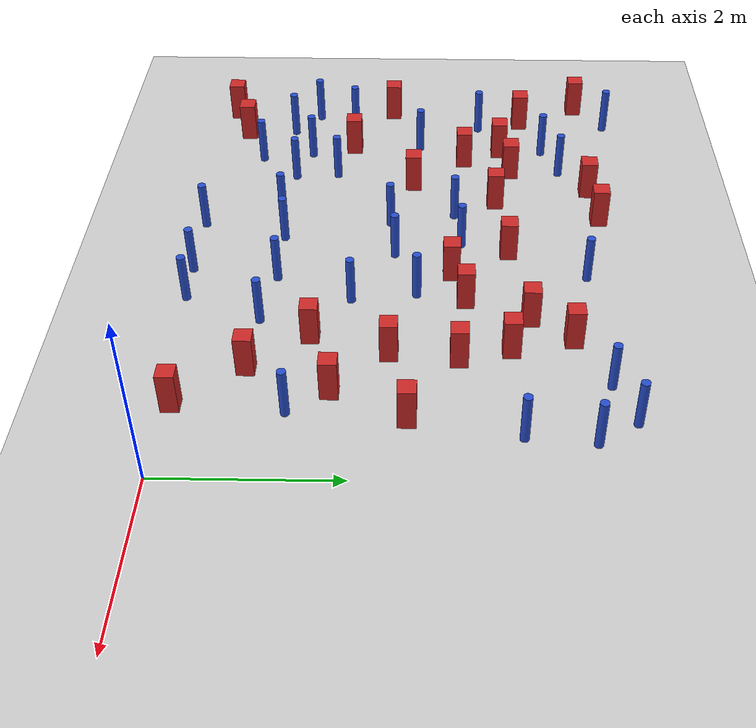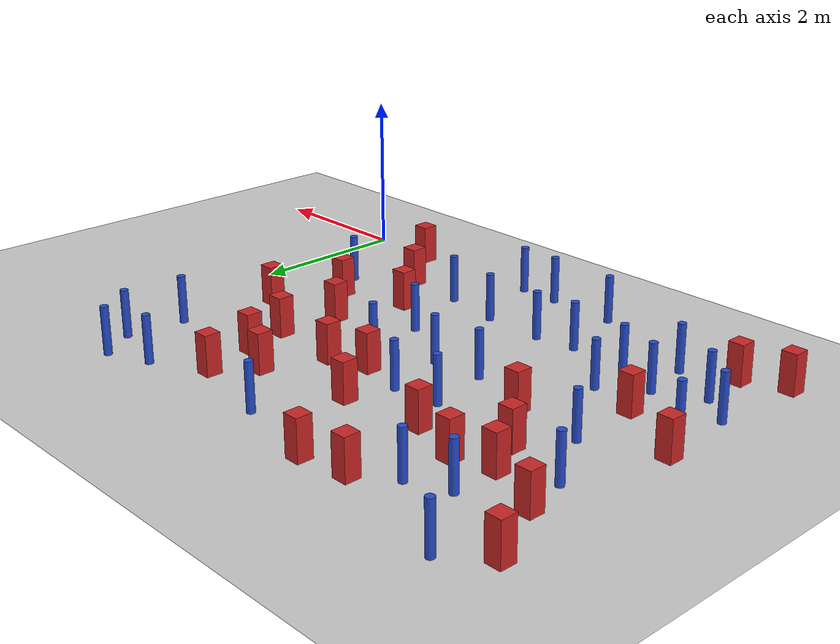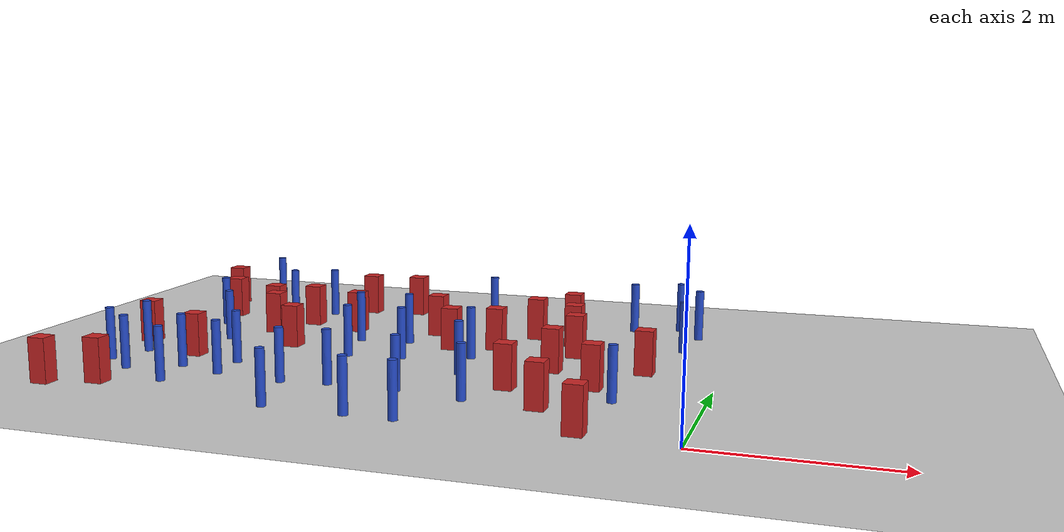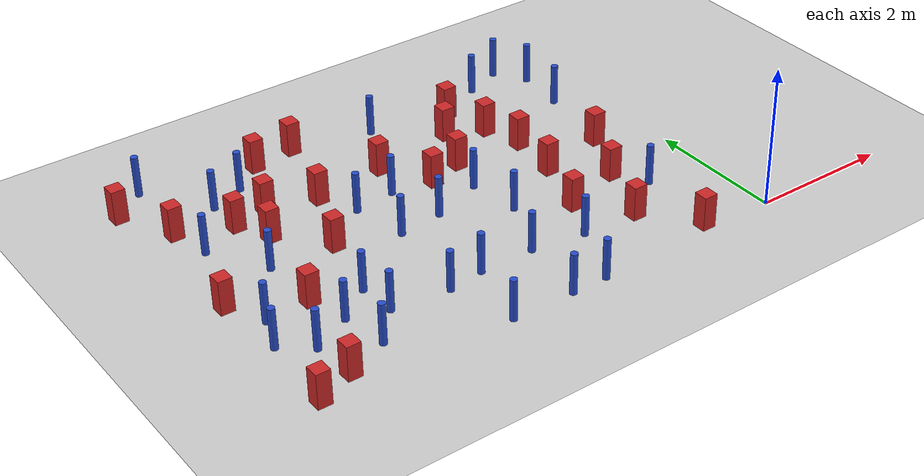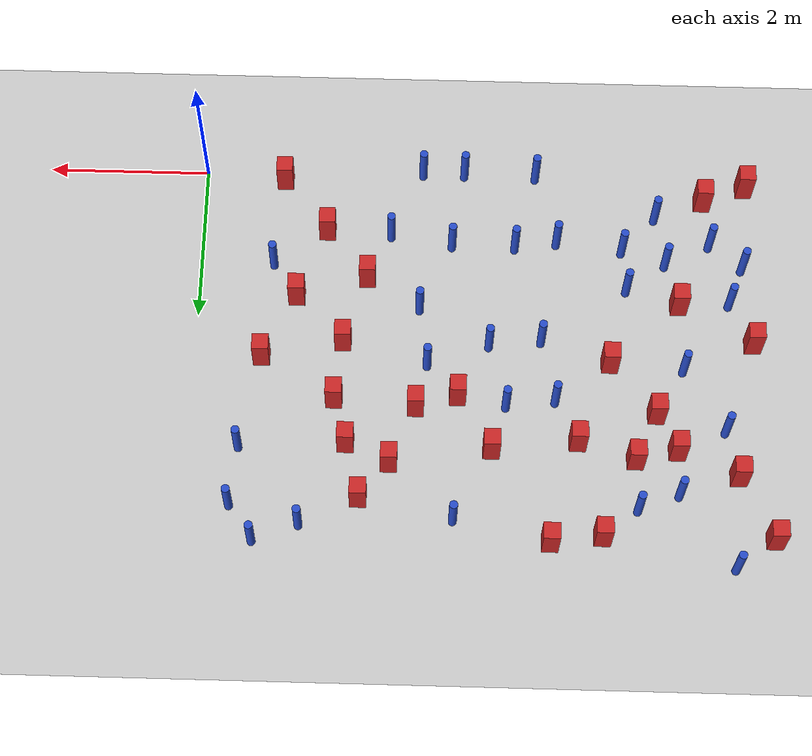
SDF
<sdf version="1.6">
 <world name="default">
  <model name="ground_plane">
   <static>1</static>
   <link name="link">
    <collision name="collision">
     <geometry><plane><normal>0 0 1</normal><size>100 100</size></plane></geometry>
     <surface><friction><ode><mu>100</mu><mu2>50</mu2></ode></friction></surface>
    </collision>
    <visual name="visual">
     <cast_shadows>0</cast_shadows>
     <geometry><plane><normal>0 0 1</normal><size>100 100</size></plane></geometry>
     <material>
      <ambient>1.0 1.0 1.0 1.0</ambient>
      <diffuse>0.8 0.8 0.8 1.0</diffuse>
      <specular>0.01 0.01 0.01 1.000000</specular>
     </material>
    </visual>
   </link>
  </model>
  <model name="pole_obstacle1">
   <static>true</static>
   <pose>-3.26398219934 -0.0242368059715 2.88873142074e-08 -9.90536689502e-09 4.60219948997e-07 -1.20965994956e-07</pose>
   <link name="link">
    <pose>0 0 0.3 0 -0 0</pose>
    <inertial>
     <mass>1</mass>
     <inertia><ixx>0.145833</ixx><ixy>0</ixy><ixz>0</ixz><iyy>0.145833</iyy><iyz>0</iyz><izz>0.125</izz></inertia>
    </inertial>
    <collision name="collision">
     <geometry><cylinder><radius>0.05</radius><length>.6</length></cylinder></geometry>
    </collision>
    <visual name="visual">
     <geometry><cylinder><radius>0.05</radius><length>.6</length></cylinder></geometry>
     <material>
      <script><name>Gazebo/Blue</name><uri>file://media/materials/scripts/gazebo.material</uri></script>
     </material>
    </visual>
   </link>
  </model>
  <model name="pole_obstacle4">
   <static>true</static>
   <pose>-4.161526478 -0.00585685088212 2.88873142074e-08 -9.90536689125e-09 4.60219949006e-07 -1.20965994951e-07</pose>
   <link name="link">
    <pose>0 0 0.3 0 -0 0</pose>
    <inertial>
     <mass>1</mass>
     <inertia><ixx>0.145833</ixx><ixy>0</ixy><ixz>0</ixz><iyy>0.145833</iyy><iyz>0</iyz><izz>0.125</izz></inertia>
    </inertial>
    <collision name="collision">
     <geometry><cylinder><radius>0.05</radius><length>.6</length></cylinder></geometry>
    </collision>
    <visual name="visual">
     <geometry><cylinder><radius>0.05</radius><length>.6</length></cylinder></geometry>
     <material>
      <script><name>Gazebo/Blue</name><uri>file://media/materials/scripts/gazebo.material</uri></script>
     </material>
    </visual>
   </link>
  </model>
  <model name="pole_obstacle8">
   <static>true</static>
   <pose>-4.42272245899 0.923110105509 2.88873142074e-08 -9.90536689837e-09 4.60219948989e-07 -1.2096599496e-07</pose>
   <link name="link">
    <pose>0 0 0.3 0 -0 0</pose>
    <inertial>
     <mass>1</mass>
     <inertia><ixx>0.145833</ixx><ixy>0</ixy><ixz>0</ixz><iyy>0.145833</iyy><iyz>0</iyz><izz>0.125</izz></inertia>
    </inertial>
    <collision name="collision">
     <geometry><cylinder><radius>0.05</radius><length>.6</length></cylinder></geometry>
    </collision>
    <visual name="visual">
     <geometry><cylinder><radius>0.05</radius><length>.6</length></cylinder></geometry>
     <material>
      <script><name>Gazebo/Blue</name><uri>file://media/materials/scripts/gazebo.material</uri></script>
     </material>
    </visual>
   </link>
  </model>
  <model name="pole_obstacle22">
   <static>true</static>
   <pose>-5.3675292602 4.44108544787 2.88873142074e-08 -9.90536690842e-09 4.60219948965e-07 -1.20965994976e-07</pose>
   <link name="link">
    <pose>0 0 0.3 0 -0 0</pose>
    <inertial>
     <mass>1</mass>
     <inertia><ixx>0.145833</ixx><ixy>0</ixy><ixz>0</ixz><iyy>0.145833</iyy><iyz>0</iyz><izz>0.125</izz></inertia>
    </inertial>
    <collision name="collision">
     <geometry><cylinder><radius>0.05</radius><length>.6</length></cylinder></geometry>
    </collision>
    <visual name="visual">
     <geometry><cylinder><radius>0.05</radius><length>.6</length></cylinder></geometry>
     <material>
      <script><name>Gazebo/Blue</name><uri>file://media/materials/scripts/gazebo.material</uri></script>
     </material>
    </visual>
   </link>
  </model>
  <model name="pole_obstacle32">
   <static>true</static>
   <pose>-6.72400458149 1.230508557 2.88873142074e-08 -9.90536689445e-09 4.60219948999e-07 -1.20965994956e-07</pose>
   <link name="link">
    <pose>0 0 0.3 0 -0 0</pose>
    <inertial>
     <mass>1</mass>
     <inertia><ixx>0.145833</ixx><ixy>0</ixy><ixz>0</ixz><iyy>0.145833</iyy><iyz>0</iyz><izz>0.125</izz></inertia>
    </inertial>
    <collision name="collision">
     <geometry><cylinder><radius>0.05</radius><length>.6</length></cylinder></geometry>
    </collision>
    <visual name="visual">
     <geometry><cylinder><radius>0.05</radius><length>.6</length></cylinder></geometry>
     <material>
      <script><name>Gazebo/Blue</name><uri>file://media/materials/scripts/gazebo.material</uri></script>
     </material>
    </visual>
   </link>
  </model>
  <model name="square_post_obstacle31">
   <static>true</static>
   <pose>-5.34990355791 3.80533150657 8.22691968438e-08 7.2212513382e-06 -7.54495500217e-07 2.29674213826e-05</pose>
   <link name="link">
    <pose>0 0 0.25 0 -0 0</pose>
    <inertial>
     <mass>100</mass>
     <inertia>
      <ixx>0.166667</ixx>
      <ixy>0</ixy>
      <ixz>0</ixz>
      <iyy>0.166667</iyy>
      <iyz>0</iyz>
      <izz>0.166667</izz>
     </inertia>
    </inertial>
    <collision name="collision"><geometry><box><size>.2 .2 .5</size></box></geometry></collision>
    <visual name="visual">
     <geometry><box><size>.2 .2 .5</size></box></geometry>
     <material>
      <script><name>Gazebo/Red</name><uri>file://media/materials/scripts/gazebo.material</uri></script>
     </material>
    </visual>
   </link>
  </model>
  <model name="pole_obstacle44">
   <static>true</static>
   <pose>-0.524122467253 4.49635875768 2.88873142074e-08 -9.90536689526e-09 4.60219948997e-07 -1.20965994955e-07</pose>
   <link name="link">
    <pose>0 0 0.3 0 -0 0</pose>
    <inertial>
     <mass>1</mass>
     <inertia><ixx>0.145833</ixx><ixy>0</ixy><ixz>0</ixz><iyy>0.145833</iyy><iyz>0</iyz><izz>0.125</izz></inertia>
    </inertial>
    <collision name="collision">
     <geometry><cylinder><radius>0.05</radius><length>.6</length></cylinder></geometry>
    </collision>
    <visual name="visual">
     <geometry><cylinder><radius>0.05</radius><length>.6</length></cylinder></geometry>
     <material>
      <script><name>Gazebo/Blue</name><uri>file://media/materials/scripts/gazebo.material</uri></script>
     </material>
    </visual>
   </link>
  </model>
  <model name="pole_obstacle56">
   <static>true</static>
   <pose>-3.17685898146 4.62035457238 2.88873142074e-08 -9.90536692062e-09 4.60219948937e-07 -1.20965994985e-07</pose>
   <link name="link">
    <pose>0 0 0.3 0 -0 0</pose>
    <inertial>
     <mass>1</mass>
     <inertia><ixx>0.145833</ixx><ixy>0</ixy><ixz>0</ixz><iyy>0.145833</iyy><iyz>0</iyz><izz>0.125</izz></inertia>
    </inertial>
    <collision name="collision">
     <geometry><cylinder><radius>0.05</radius><length>.6</length></cylinder></geometry>
    </collision>
    <visual name="visual">
     <geometry><cylinder><radius>0.05</radius><length>.6</length></cylinder></geometry>
     <material>
      <script><name>Gazebo/Blue</name><uri>file://media/materials/scripts/gazebo.material</uri></script>
     </material>
    </visual>
   </link>
  </model>
  <model name="pole_obstacle62">
   <static>true</static>
   <pose>-3.90356683705 1.0001730065 2.88873142074e-08 -9.90536691025e-09 4.60219948961e-07 -1.2096599498e-07</pose>
   <link name="link">
    <pose>0 0 0.3 0 -0 0</pose>
    <inertial>
     <mass>1</mass>
     <inertia><ixx>0.145833</ixx><ixy>0</ixy><ixz>0</ixz><iyy>0.145833</iyy><iyz>0</iyz><izz>0.125</izz></inertia>
    </inertial>
    <collision name="collision">
     <geometry><cylinder><radius>0.05</radius><length>.6</length></cylinder></geometry>
    </collision>
    <visual name="visual">
     <geometry><cylinder><radius>0.05</radius><length>.6</length></cylinder></geometry>
     <material>
      <script><name>Gazebo/Blue</name><uri>file://media/materials/scripts/gazebo.material</uri></script>
     </material>
    </visual>
   </link>
  </model>
  <model name="square_post_obstacle48">
   <static>true</static>
   <pose>-0.99838406911 0.103101860127 8.22691968438e-08 7.2212513382e-06 -7.54495500217e-07 2.29674213826e-05</pose>
   <link name="link">
    <pose>0 0 0.25 0 -0 0</pose>
    <inertial>
     <mass>100</mass>
     <inertia>
      <ixx>0.166667</ixx>
      <ixy>0</ixy>
      <ixz>0</ixz>
      <iyy>0.166667</iyy>
      <iyz>0</iyz>
      <izz>0.166667</izz>
     </inertia>
    </inertial>
    <collision name="collision"><geometry><box><size>.2 .2 .5</size></box></geometry></collision>
    <visual name="visual">
     <geometry><box><size>.2 .2 .5</size></box></geometry>
     <material>
      <script><name>Gazebo/Red</name><uri>file://media/materials/scripts/gazebo.material</uri></script>
     </material>
    </visual>
   </link>
  </model>
  <model name="pole_obstacle63">
   <static>true</static>
   <pose>-5.86101761593 4.24448428332 2.88873142074e-08 -9.90536690842e-09 4.60219948965e-07 -1.20965994976e-07</pose>
   <link name="link">
    <pose>0 0 0.3 0 -0 0</pose>
    <inertial>
     <mass>1</mass>
     <inertia><ixx>0.145833</ixx><ixy>0</ixy><ixz>0</ixz><iyy>0.145833</iyy><iyz>0</iyz><izz>0.125</izz></inertia>
    </inertial>
    <collision name="collision">
     <geometry><cylinder><radius>0.05</radius><length>.6</length></cylinder></geometry>
    </collision>
    <visual name="visual">
     <geometry><cylinder><radius>0.05</radius><length>.6</length></cylinder></geometry>
     <material>
      <script><name>Gazebo/Blue</name><uri>file://media/materials/scripts/gazebo.material</uri></script>
     </material>
    </visual>
   </link>
  </model>
  <model name="square_post_obstacle52">
   <static>true</static>
   <pose>-6.97136929879 4.76526996203 8.22691968438e-08 7.22125133819e-06 -7.54495500217e-07 2.29674213826e-05</pose>
   <link name="link">
    <pose>0 0 0.25 0 -0 0</pose>
    <inertial>
     <mass>100</mass>
     <inertia>
      <ixx>0.166667</ixx>
      <ixy>0</ixy>
      <ixz>0</ixz>
      <iyy>0.166667</iyy>
      <iyz>0</iyz>
      <izz>0.166667</izz>
     </inertia>
    </inertial>
    <collision name="collision"><geometry><box><size>.2 .2 .5</size></box></geometry></collision>
    <visual name="visual">
     <geometry><box><size>.2 .2 .5</size></box></geometry>
     <material>
      <script><name>Gazebo/Red</name><uri>file://media/materials/scripts/gazebo.material</uri></script>
     </material>
    </visual>
   </link>
  </model>
  <model name="square_post_obstacle56">
   <static>true</static>
   <pose>-3.21470726831 3.0300304294 8.22691968438e-08 7.2212513382e-06 -7.54495500217e-07 2.29674213826e-05</pose>
   <link name="link">
    <pose>0 0 0.25 0 -0 0</pose>
    <inertial>
     <mass>100</mass>
     <inertia>
      <ixx>0.166667</ixx>
      <ixy>0</ixy>
      <ixz>0</ixz>
      <iyy>0.166667</iyy>
      <iyz>0</iyz>
      <izz>0.166667</izz>
     </inertia>
    </inertial>
    <collision name="collision"><geometry><box><size>.2 .2 .5</size></box></geometry></collision>
    <visual name="visual">
     <geometry><box><size>.2 .2 .5</size></box></geometry>
     <material>
      <script><name>Gazebo/Red</name><uri>file://media/materials/scripts/gazebo.material</uri></script>
     </material>
    </visual>
   </link>
  </model>
  <model name="square_post_obstacle59">
   <static>true</static>
   <pose>-2.40510457549 3.91541568477 8.22691968438e-08 7.2212513382e-06 -7.54495500217e-07 2.29674213826e-05</pose>
   <link name="link">
    <pose>0 0 0.25 0 -0 0</pose>
    <inertial>
     <mass>100</mass>
     <inertia>
      <ixx>0.166667</ixx>
      <ixy>0</ixy>
      <ixz>0</ixz>
      <iyy>0.166667</iyy>
      <iyz>0</iyz>
      <izz>0.166667</izz>
     </inertia>
    </inertial>
    <collision name="collision"><geometry><box><size>.2 .2 .5</size></box></geometry></collision>
    <visual name="visual">
     <geometry><box><size>.2 .2 .5</size></box></geometry>
     <material>
      <script><name>Gazebo/Red</name><uri>file://media/materials/scripts/gazebo.material</uri></script>
     </material>
    </visual>
   </link>
  </model>
  <model name="pole_obstacle73">
   <static>true</static>
   <pose>-6.54842938975 1.72323444984 2.88873142074e-08 -9.90536689445e-09 4.60219948999e-07 -1.20965994956e-07</pose>
   <link name="link">
    <pose>0 0 0.3 0 -0 0</pose>
    <inertial>
     <mass>1</mass>
     <inertia><ixx>0.145833</ixx><ixy>0</ixy><ixz>0</ixz><iyy>0.145833</iyy><iyz>0</iyz><izz>0.125</izz></inertia>
    </inertial>
    <collision name="collision">
     <geometry><cylinder><radius>0.05</radius><length>.6</length></cylinder></geometry>
    </collision>
    <visual name="visual">
     <geometry><cylinder><radius>0.05</radius><length>.6</length></cylinder></geometry>
     <material>
      <script><name>Gazebo/Blue</name><uri>file://media/materials/scripts/gazebo.material</uri></script>
     </material>
    </visual>
   </link>
  </model>
  <model name="square_post_obstacle65">
   <static>true</static>
   <pose>-6.80130274015 0.0760531097651 8.22691968438e-08 7.22125133819e-06 -7.54495500217e-07 2.29674213826e-05</pose>
   <link name="link">
    <pose>0 0 0.25 0 -0 0</pose>
    <inertial>
     <mass>100</mass>
     <inertia>
      <ixx>0.166667</ixx>
      <ixy>0</ixy>
      <ixz>0</ixz>
      <iyy>0.166667</iyy>
      <iyz>0</iyz>
      <izz>0.166667</izz>
     </inertia>
    </inertial>
    <collision name="collision"><geometry><box><size>.2 .2 .5</size></box></geometry></collision>
    <visual name="visual">
     <geometry><box><size>.2 .2 .5</size></box></geometry>
     <material>
      <script><name>Gazebo/Red</name><uri>file://media/materials/scripts/gazebo.material</uri></script>
     </material>
    </visual>
   </link>
  </model>
  <model name="pole_obstacle84">
   <static>true</static>
   <pose>-5.28284834255 1.56042263338 2.88873142074e-08 -9.90536689445e-09 4.60219948999e-07 -1.20965994956e-07</pose>
   <link name="link">
    <pose>0 0 0.3 0 -0 0</pose>
    <inertial>
     <mass>1</mass>
     <inertia><ixx>0.145833</ixx><ixy>0</ixy><ixz>0</ixz><iyy>0.145833</iyy><iyz>0</iyz><izz>0.125</izz></inertia>
    </inertial>
    <collision name="collision">
     <geometry><cylinder><radius>0.05</radius><length>.6</length></cylinder></geometry>
    </collision>
    <visual name="visual">
     <geometry><cylinder><radius>0.05</radius><length>.6</length></cylinder></geometry>
     <material>
      <script><name>Gazebo/Blue</name><uri>file://media/materials/scripts/gazebo.material</uri></script>
     </material>
    </visual>
   </link>
  </model>
  <model name="square_post_obstacle73">
   <static>true</static>
   <pose>-5.61420373291 3.20952604746 8.22691968438e-08 7.2212513382e-06 -7.54495500217e-07 2.29674213826e-05</pose>
   <link name="link">
    <pose>0 0 0.25 0 -0 0</pose>
    <inertial>
     <mass>100</mass>
     <inertia>
      <ixx>0.166667</ixx>
      <ixy>0</ixy>
      <ixz>0</ixz>
      <iyy>0.166667</iyy>
      <iyz>0</iyz>
      <izz>0.166667</izz>
     </inertia>
    </inertial>
    <collision name="collision"><geometry><box><size>.2 .2 .5</size></box></geometry></collision>
    <visual name="visual">
     <geometry><box><size>.2 .2 .5</size></box></geometry>
     <material>
      <script><name>Gazebo/Red</name><uri>file://media/materials/scripts/gazebo.material</uri></script>
     </material>
    </visual>
   </link>
  </model>
  <model name="pole_obstacle88">
   <static>true</static>
   <pose>-3.79971493647 3.15258115513 2.88873142074e-08 -9.90536690232e-09 4.6021994898e-07 -1.20965994968e-07</pose>
   <link name="link">
    <pose>0 0 0.3 0 -0 0</pose>
    <inertial>
     <mass>1</mass>
     <inertia><ixx>0.145833</ixx><ixy>0</ixy><ixz>0</ixz><iyy>0.145833</iyy><iyz>0</iyz><izz>0.125</izz></inertia>
    </inertial>
    <collision name="collision">
     <geometry><cylinder><radius>0.05</radius><length>.6</length></cylinder></geometry>
    </collision>
    <visual name="visual">
     <geometry><cylinder><radius>0.05</radius><length>.6</length></cylinder></geometry>
     <material>
      <script><name>Gazebo/Blue</name><uri>file://media/materials/scripts/gazebo.material</uri></script>
     </material>
    </visual>
   </link>
  </model>
  <model name="pole_obstacle90">
   <static>true</static>
   <pose>-2.83902625776 2.62868540604 2.88873142074e-08 -9.90536690232e-09 4.6021994898e-07 -1.20965994968e-07</pose>
   <link name="link">
    <pose>0 0 0.3 0 -0 0</pose>
    <inertial>
     <mass>1</mass>
     <inertia><ixx>0.145833</ixx><ixy>0</ixy><ixz>0</ixz><iyy>0.145833</iyy><iyz>0</iyz><izz>0.125</izz></inertia>
    </inertial>
    <collision name="collision">
     <geometry><cylinder><radius>0.05</radius><length>.6</length></cylinder></geometry>
    </collision>
    <visual name="visual">
     <geometry><cylinder><radius>0.05</radius><length>.6</length></cylinder></geometry>
     <material>
      <script><name>Gazebo/Blue</name><uri>file://media/materials/scripts/gazebo.material</uri></script>
     </material>
    </visual>
   </link>
  </model>
  <model name="pole_obstacle93">
   <static>true</static>
   <pose>-0.907639694757 1.29783912838 2.88873142074e-08 -9.90536689855e-09 4.60219948989e-07 -1.20965994962e-07</pose>
   <link name="link">
    <pose>0 0 0.3 0 -0 0</pose>
    <inertial>
     <mass>1</mass>
     <inertia><ixx>0.145833</ixx><ixy>0</ixy><ixz>0</ixz><iyy>0.145833</iyy><iyz>0</iyz><izz>0.125</izz></inertia>
    </inertial>
    <collision name="collision">
     <geometry><cylinder><radius>0.05</radius><length>.6</length></cylinder></geometry>
    </collision>
    <visual name="visual">
     <geometry><cylinder><radius>0.05</radius><length>.6</length></cylinder></geometry>
     <material>
      <script><name>Gazebo/Blue</name><uri>file://media/materials/scripts/gazebo.material</uri></script>
     </material>
    </visual>
   </link>
  </model>
  <model name="square_post_obstacle86">
   <static>true</static>
   <pose>-0.817158664544 2.55997999105 8.22691968438e-08 7.2212513382e-06 -7.54495500217e-07 2.29674213826e-05</pose>
   <link name="link">
    <pose>0 0 0.25 0 -0 0</pose>
    <inertial>
     <mass>100</mass>
     <inertia>
      <ixx>0.166667</ixx>
      <ixy>0</ixy>
      <ixz>0</ixz>
      <iyy>0.166667</iyy>
      <iyz>0</iyz>
      <izz>0.166667</izz>
     </inertia>
    </inertial>
    <collision name="collision"><geometry><box><size>.2 .2 .5</size></box></geometry></collision>
    <visual name="visual">
     <geometry><box><size>.2 .2 .5</size></box></geometry>
     <material>
      <script><name>Gazebo/Red</name><uri>file://media/materials/scripts/gazebo.material</uri></script>
     </material>
    </visual>
   </link>
  </model>
  <model name="pole_obstacle94">
   <static>true</static>
   <pose>-5.77137858882 1.19435002336 2.88873142074e-08 -9.90536689445e-09 4.60219948999e-07 -1.20965994956e-07</pose>
   <link name="link">
    <pose>0 0 0.3 0 -0 0</pose>
    <inertial>
     <mass>1</mass>
     <inertia><ixx>0.145833</ixx><ixy>0</ixy><ixz>0</ixz><iyy>0.145833</iyy><iyz>0</iyz><izz>0.125</izz></inertia>
    </inertial>
    <collision name="collision">
     <geometry><cylinder><radius>0.05</radius><length>.6</length></cylinder></geometry>
    </collision>
    <visual name="visual">
     <geometry><cylinder><radius>0.05</radius><length>.6</length></cylinder></geometry>
     <material>
      <script><name>Gazebo/Blue</name><uri>file://media/materials/scripts/gazebo.material</uri></script>
     </material>
    </visual>
   </link>
  </model>
  <model name="pole_obstacle95">
   <static>true</static>
   <pose>-1.35789563958 4.72056294256 2.88873142074e-08 -9.90536689852e-09 4.60219948989e-07 -1.2096599496e-07</pose>
   <link name="link">
    <pose>0 0 0.3 0 -0 0</pose>
    <inertial>
     <mass>1</mass>
     <inertia><ixx>0.145833</ixx><ixy>0</ixy><ixz>0</ixz><iyy>0.145833</iyy><iyz>0</iyz><izz>0.125</izz></inertia>
    </inertial>
    <collision name="collision">
     <geometry><cylinder><radius>0.05</radius><length>.6</length></cylinder></geometry>
    </collision>
    <visual name="visual">
     <geometry><cylinder><radius>0.05</radius><length>.6</length></cylinder></geometry>
     <material>
      <script><name>Gazebo/Blue</name><uri>file://media/materials/scripts/gazebo.material</uri></script>
     </material>
    </visual>
   </link>
  </model>
  <model name="pole_obstacle96">
   <static>true</static>
   <pose>-0.593797554638 3.75416547322 2.88873142074e-08 -9.90536689636e-09 4.60219948994e-07 -1.20965994958e-07</pose>
   <link name="link">
    <pose>0 0 0.3 0 -0 0</pose>
    <inertial>
     <mass>1</mass>
     <inertia><ixx>0.145833</ixx><ixy>0</ixy><ixz>0</ixz><iyy>0.145833</iyy><iyz>0</iyz><izz>0.125</izz></inertia>
    </inertial>
    <collision name="collision">
     <geometry><cylinder><radius>0.05</radius><length>.6</length></cylinder></geometry>
    </collision>
    <visual name="visual">
     <geometry><cylinder><radius>0.05</radius><length>.6</length></cylinder></geometry>
     <material>
      <script><name>Gazebo/Blue</name><uri>file://media/materials/scripts/gazebo.material</uri></script>
     </material>
    </visual>
   </link>
  </model>
  <model name="pole_obstacle97">
   <static>true</static>
   <pose>-4.22671641016 2.283513169 2.88873142074e-08 -9.90536690245e-09 4.6021994898e-07 -1.20965994966e-07</pose>
   <link name="link">
    <pose>0 0 0.3 0 -0 0</pose>
    <inertial>
     <mass>1</mass>
     <inertia><ixx>0.145833</ixx><ixy>0</ixy><ixz>0</ixz><iyy>0.145833</iyy><iyz>0</iyz><izz>0.125</izz></inertia>
    </inertial>
    <collision name="collision">
     <geometry><cylinder><radius>0.05</radius><length>.6</length></cylinder></geometry>
    </collision>
    <visual name="visual">
     <geometry><cylinder><radius>0.05</radius><length>.6</length></cylinder></geometry>
     <material>
      <script><name>Gazebo/Blue</name><uri>file://media/materials/scripts/gazebo.material</uri></script>
     </material>
    </visual>
   </link>
  </model>
  <model name="square_post_obstacle91">
   <static>true</static>
   <pose>-2.07872042974 1.46454317605 8.22691968438e-08 7.2212513382e-06 -7.54495500217e-07 2.29674213826e-05</pose>
   <link name="link">
    <pose>0 0 0.25 0 -0 0</pose>
    <inertial>
     <mass>100</mass>
     <inertia>
      <ixx>0.166667</ixx>
      <ixy>0</ixy>
      <ixz>0</ixz>
      <iyy>0.166667</iyy>
      <iyz>0</iyz>
      <izz>0.166667</izz>
     </inertia>
    </inertial>
    <collision name="collision"><geometry><box><size>.2 .2 .5</size></box></geometry></collision>
    <visual name="visual">
     <geometry><box><size>.2 .2 .5</size></box></geometry>
     <material>
      <script><name>Gazebo/Red</name><uri>file://media/materials/scripts/gazebo.material</uri></script>
     </material>
    </visual>
   </link>
  </model>
  <model name="square_post_obstacle95">
   <static>true</static>
   <pose>-5.06497270215 2.55241721964 8.22691968438e-08 7.2212513382e-06 -7.54495500217e-07 2.29674213826e-05</pose>
   <link name="link">
    <pose>0 0 0.25 0 -0 0</pose>
    <inertial>
     <mass>100</mass>
     <inertia>
      <ixx>0.166667</ixx>
      <ixy>0</ixy>
      <ixz>0</ixz>
      <iyy>0.166667</iyy>
      <iyz>0</iyz>
      <izz>0.166667</izz>
     </inertia>
    </inertial>
    <collision name="collision"><geometry><box><size>.2 .2 .5</size></box></geometry></collision>
    <visual name="visual">
     <geometry><box><size>.2 .2 .5</size></box></geometry>
     <material>
      <script><name>Gazebo/Red</name><uri>file://media/materials/scripts/gazebo.material</uri></script>
     </material>
    </visual>
   </link>
  </model>
  <model name="square_post_obstacle96">
   <static>true</static>
   <pose>-6.57789299036 3.98438122718 8.22691968438e-08 7.22125133819e-06 -7.54495500217e-07 2.29674213826e-05</pose>
   <link name="link">
    <pose>0 0 0.25 0 -0 0</pose>
    <inertial>
     <mass>100</mass>
     <inertia>
      <ixx>0.166667</ixx>
      <ixy>0</ixy>
      <ixz>0</ixz>
      <iyy>0.166667</iyy>
      <iyz>0</iyz>
      <izz>0.166667</izz>
     </inertia>
    </inertial>
    <collision name="collision"><geometry><box><size>.2 .2 .5</size></box></geometry></collision>
    <visual name="visual">
     <geometry><box><size>.2 .2 .5</size></box></geometry>
     <material>
      <script><name>Gazebo/Red</name><uri>file://media/materials/scripts/gazebo.material</uri></script>
     </material>
    </visual>
   </link>
  </model>
  <model name="square_post_obstacle97">
   <static>true</static>
   <pose>-1.72133723766 3.10440335146 8.22691968438e-08 7.2212513382e-06 -7.54495500217e-07 2.29674213826e-05</pose>
   <link name="link">
    <pose>0 0 0.25 0 -0 0</pose>
    <inertial>
     <mass>100</mass>
     <inertia>
      <ixx>0.166667</ixx>
      <ixy>0</ixy>
      <ixz>0</ixz>
      <iyy>0.166667</iyy>
      <iyz>0</iyz>
      <izz>0.166667</izz>
     </inertia>
    </inertial>
    <collision name="collision"><geometry><box><size>.2 .2 .5</size></box></geometry></collision>
    <visual name="visual">
     <geometry><box><size>.2 .2 .5</size></box></geometry>
     <material>
      <script><name>Gazebo/Red</name><uri>file://media/materials/scripts/gazebo.material</uri></script>
     </material>
    </visual>
   </link>
  </model>
  <model name="square_post_obstacle98">
   <static>true</static>
   <pose>-1.80490444066 2.34174392922 8.22691968438e-08 7.2212513382e-06 -7.54495500217e-07 2.29674213826e-05</pose>
   <link name="link">
    <pose>0 0 0.25 0 -0 0</pose>
    <inertial>
     <mass>100</mass>
     <inertia>
      <ixx>0.166667</ixx>
      <ixy>0</ixy>
      <ixz>0</ixz>
      <iyy>0.166667</iyy>
      <iyz>0</iyz>
      <izz>0.166667</izz>
     </inertia>
    </inertial>
    <collision name="collision"><geometry><box><size>.2 .2 .5</size></box></geometry></collision>
    <visual name="visual">
     <geometry><box><size>.2 .2 .5</size></box></geometry>
     <material>
      <script><name>Gazebo/Red</name><uri>file://media/materials/scripts/gazebo.material</uri></script>
     </material>
    </visual>
   </link>
  </model>
  <model name="pole_obstacle104">
   <static>true</static>
   <pose>-6.32948363601 0.912327118657 2.88873142074e-08 -9.90536689837e-09 4.60219948989e-07 -1.2096599496e-07</pose>
   <link name="link">
    <pose>0 0 0.3 0 -0 0</pose>
    <inertial>
     <mass>1</mass>
     <inertia><ixx>0.145833</ixx><ixy>0</ixy><ixz>0</ixz><iyy>0.145833</iyy><iyz>0</iyz><izz>0.125</izz></inertia>
    </inertial>
    <collision name="collision">
     <geometry><cylinder><radius>0.05</radius><length>.6</length></cylinder></geometry>
    </collision>
    <visual name="visual">
     <geometry><cylinder><radius>0.05</radius><length>.6</length></cylinder></geometry>
     <material>
      <script><name>Gazebo/Blue</name><uri>file://media/materials/scripts/gazebo.material</uri></script>
     </material>
    </visual>
   </link>
  </model>
  <model name="pole_obstacle122">
   <static>true</static>
   <pose>-2.35922055424 0.868410605438 2.88873142074e-08 -9.90536689285e-09 4.60219949002e-07 -1.20965994953e-07</pose>
   <link name="link">
    <pose>0 0 0.3 0 -0 0</pose>
    <inertial>
     <mass>1</mass>
     <inertia><ixx>0.145833</ixx><ixy>0</ixy><ixz>0</ixz><iyy>0.145833</iyy><iyz>0</iyz><izz>0.125</izz></inertia>
    </inertial>
    <collision name="collision">
     <geometry><cylinder><radius>0.05</radius><length>.6</length></cylinder></geometry>
    </collision>
    <visual name="visual">
     <geometry><cylinder><radius>0.05</radius><length>.6</length></cylinder></geometry>
     <material>
      <script><name>Gazebo/Blue</name><uri>file://media/materials/scripts/gazebo.material</uri></script>
     </material>
    </visual>
   </link>
  </model>
  <model name="pole_obstacle125">
   <static>true</static>
   <pose>-0.815386493689 4.93169074015 2.88873142074e-08 -9.90536689661e-09 4.60219948993e-07 -1.20965994957e-07</pose>
   <link name="link">
    <pose>0 0 0.3 0 -0 0</pose>
    <inertial>
     <mass>1</mass>
     <inertia><ixx>0.145833</ixx><ixy>0</ixy><ixz>0</ixz><iyy>0.145833</iyy><iyz>0</iyz><izz>0.125</izz></inertia>
    </inertial>
    <collision name="collision">
     <geometry><cylinder><radius>0.05</radius><length>.6</length></cylinder></geometry>
    </collision>
    <visual name="visual">
     <geometry><cylinder><radius>0.05</radius><length>.6</length></cylinder></geometry>
     <material>
      <script><name>Gazebo/Blue</name><uri>file://media/materials/scripts/gazebo.material</uri></script>
     </material>
    </visual>
   </link>
  </model>
  <model name="pole_obstacle128">
   <static>true</static>
   <pose>-3.12031214651 0.990860951748 2.88873142074e-08 -9.90536689701e-09 4.60219948992e-07 -1.20965994959e-07</pose>
   <link name="link">
    <pose>0 0 0.3 0 -0 0</pose>
    <inertial>
     <mass>1</mass>
     <inertia><ixx>0.145833</ixx><ixy>0</ixy><ixz>0</ixz><iyy>0.145833</iyy><iyz>0</iyz><izz>0.125</izz></inertia>
    </inertial>
    <collision name="collision">
     <geometry><cylinder><radius>0.05</radius><length>.6</length></cylinder></geometry>
    </collision>
    <visual name="visual">
     <geometry><cylinder><radius>0.05</radius><length>.6</length></cylinder></geometry>
     <material>
      <script><name>Gazebo/Blue</name><uri>file://media/materials/scripts/gazebo.material</uri></script>
     </material>
    </visual>
   </link>
  </model>
  <model name="pole_obstacle129">
   <static>true</static>
   <pose>-6.49767805435 5.14013811187 2.88873142074e-08 -9.90536690842e-09 4.60219948965e-07 -1.20965994976e-07</pose>
   <link name="link">
    <pose>0 0 0.3 0 -0 0</pose>
    <inertial>
     <mass>1</mass>
     <inertia><ixx>0.145833</ixx><ixy>0</ixy><ixz>0</ixz><iyy>0.145833</iyy><iyz>0</iyz><izz>0.125</izz></inertia>
    </inertial>
    <collision name="collision">
     <geometry><cylinder><radius>0.05</radius><length>.6</length></cylinder></geometry>
    </collision>
    <visual name="visual">
     <geometry><cylinder><radius>0.05</radius><length>.6</length></cylinder></geometry>
     <material>
      <script><name>Gazebo/Blue</name><uri>file://media/materials/scripts/gazebo.material</uri></script>
     </material>
    </visual>
   </link>
  </model>
  <model name="square_post_obstacle125">
   <static>true</static>
   <pose>-4.32247132027 4.8669960416 8.22691968438e-08 7.2212513382e-06 -7.54495500217e-07 2.29674213826e-05</pose>
   <link name="link">
    <pose>0 0 0.25 0 -0 0</pose>
    <inertial>
     <mass>100</mass>
     <inertia>
      <ixx>0.166667</ixx>
      <ixy>0</ixy>
      <ixz>0</ixz>
      <iyy>0.166667</iyy>
      <iyz>0</iyz>
      <izz>0.166667</izz>
     </inertia>
    </inertial>
    <collision name="collision"><geometry><box><size>.2 .2 .5</size></box></geometry></collision>
    <visual name="visual">
     <geometry><box><size>.2 .2 .5</size></box></geometry>
     <material>
      <script><name>Gazebo/Red</name><uri>file://media/materials/scripts/gazebo.material</uri></script>
     </material>
    </visual>
   </link>
  </model>
  <model name="square_post_obstacle128">
   <static>true</static>
   <pose>-2.05272772327 4.37031232616 8.22691968438e-08 7.22125133819e-06 -7.54495500217e-07 2.29674213826e-05</pose>
   <link name="link">
    <pose>0 0 0.25 0 -0 0</pose>
    <inertial>
     <mass>100</mass>
     <inertia>
      <ixx>0.166667</ixx>
      <ixy>0</ixy>
      <ixz>0</ixz>
      <iyy>0.166667</iyy>
      <iyz>0</iyz>
      <izz>0.166667</izz>
     </inertia>
    </inertial>
    <collision name="collision"><geometry><box><size>.2 .2 .5</size></box></geometry></collision>
    <visual name="visual">
     <geometry><box><size>.2 .2 .5</size></box></geometry>
     <material>
      <script><name>Gazebo/Red</name><uri>file://media/materials/scripts/gazebo.material</uri></script>
     </material>
    </visual>
   </link>
  </model>
  <model name="pole_obstacle132">
   <static>true</static>
   <pose>-5.65817821851 0.543888711372 2.88873142074e-08 -9.90536689326e-09 4.60219949001e-07 -1.20965994954e-07</pose>
   <link name="link">
    <pose>0 0 0.3 0 -0 0</pose>
    <inertial>
     <mass>1</mass>
     <inertia><ixx>0.145833</ixx><ixy>0</ixy><ixz>0</ixz><iyy>0.145833</iyy><iyz>0</iyz><izz>0.125</izz></inertia>
    </inertial>
    <collision name="collision">
     <geometry><cylinder><radius>0.05</radius><length>.6</length></cylinder></geometry>
    </collision>
    <visual name="visual">
     <geometry><cylinder><radius>0.05</radius><length>.6</length></cylinder></geometry>
     <material>
      <script><name>Gazebo/Blue</name><uri>file://media/materials/scripts/gazebo.material</uri></script>
     </material>
    </visual>
   </link>
  </model>
  <model name="square_post_obstacle129">
   <static>true</static>
   <pose>-6.26743350003 0.285562749789 8.22691968438e-08 7.2212513382e-06 -7.54495500217e-07 2.29674213826e-05</pose>
   <link name="link">
    <pose>0 0 0.25 0 -0 0</pose>
    <inertial>
     <mass>100</mass>
     <inertia>
      <ixx>0.166667</ixx>
      <ixy>0</ixy>
      <ixz>0</ixz>
      <iyy>0.166667</iyy>
      <iyz>0</iyz>
      <izz>0.166667</izz>
     </inertia>
    </inertial>
    <collision name="collision"><geometry><box><size>.2 .2 .5</size></box></geometry></collision>
    <visual name="visual">
     <geometry><box><size>.2 .2 .5</size></box></geometry>
     <material>
      <script><name>Gazebo/Red</name><uri>file://media/materials/scripts/gazebo.material</uri></script>
     </material>
    </visual>
   </link>
  </model>
  <model name="pole_obstacle152">
   <static>true</static>
   <pose>-5.23574483769 1.02231767293 2.88873142074e-08 -9.90536689422e-09 4.60219948999e-07 -1.20965994955e-07</pose>
   <link name="link">
    <pose>0 0 0.3 0 -0 0</pose>
    <inertial>
     <mass>1</mass>
     <inertia><ixx>0.145833</ixx><ixy>0</ixy><ixz>0</ixz><iyy>0.145833</iyy><iyz>0</iyz><izz>0.125</izz></inertia>
    </inertial>
    <collision name="collision">
     <geometry><cylinder><radius>0.05</radius><length>.6</length></cylinder></geometry>
    </collision>
    <visual name="visual">
     <geometry><cylinder><radius>0.05</radius><length>.6</length></cylinder></geometry>
     <material>
      <script><name>Gazebo/Blue</name><uri>file://media/materials/scripts/gazebo.material</uri></script>
     </material>
    </visual>
   </link>
  </model>
  <model name="pole_obstacle160">
   <static>true</static>
   <pose>-6.44142275823 3.41640935043 2.88873142074e-08 -9.90536690245e-09 4.6021994898e-07 -1.20965994966e-07</pose>
   <link name="link">
    <pose>0 0 0.3 0 -0 0</pose>
    <inertial>
     <mass>1</mass>
     <inertia><ixx>0.145833</ixx><ixy>0</ixy><ixz>0</ixz><iyy>0.145833</iyy><iyz>0</iyz><izz>0.125</izz></inertia>
    </inertial>
    <collision name="collision">
     <geometry><cylinder><radius>0.05</radius><length>.6</length></cylinder></geometry>
    </collision>
    <visual name="visual">
     <geometry><cylinder><radius>0.05</radius><length>.6</length></cylinder></geometry>
     <material>
      <script><name>Gazebo/Blue</name><uri>file://media/materials/scripts/gazebo.material</uri></script>
     </material>
    </visual>
   </link>
  </model>
  <model name="square_post_obstacle158">
   <static>true</static>
   <pose>-3.62832793469 3.71442717793 8.22691968438e-08 7.2212513382e-06 -7.54495500217e-07 2.29674213826e-05</pose>
   <link name="link">
    <pose>0 0 0.25 0 -0 0</pose>
    <inertial>
     <mass>100</mass>
     <inertia>
      <ixx>0.166667</ixx>
      <ixy>0</ixy>
      <ixz>0</ixz>
      <iyy>0.166667</iyy>
      <iyz>0</iyz>
      <izz>0.166667</izz>
     </inertia>
    </inertial>
    <collision name="collision"><geometry><box><size>.2 .2 .5</size></box></geometry></collision>
    <visual name="visual">
     <geometry><box><size>.2 .2 .5</size></box></geometry>
     <material>
      <script><name>Gazebo/Red</name><uri>file://media/materials/scripts/gazebo.material</uri></script>
     </material>
    </visual>
   </link>
  </model>
  <model name="square_post_obstacle163">
   <static>true</static>
   <pose>-2.70934573428 3.18826913021 8.22691968438e-08 7.2212513382e-06 -7.54495500217e-07 2.29674213826e-05</pose>
   <link name="link">
    <pose>0 0 0.25 0 -0 0</pose>
    <inertial>
     <mass>100</mass>
     <inertia>
      <ixx>0.166667</ixx>
      <ixy>0</ixy>
      <ixz>0</ixz>
      <iyy>0.166667</iyy>
      <iyz>0</iyz>
      <izz>0.166667</izz>
     </inertia>
    </inertial>
    <collision name="collision"><geometry><box><size>.2 .2 .5</size></box></geometry></collision>
    <visual name="visual">
     <geometry><box><size>.2 .2 .5</size></box></geometry>
     <material>
      <script><name>Gazebo/Red</name><uri>file://media/materials/scripts/gazebo.material</uri></script>
     </material>
    </visual>
   </link>
  </model>
  <model name="square_post_obstacle165">
   <static>true</static>
   <pose>-1.21246462698 1.73552577267 8.22691968438e-08 7.2212513382e-06 -7.54495500217e-07 2.29674213826e-05</pose>
   <link name="link">
    <pose>0 0 0.25 0 -0 0</pose>
    <inertial>
     <mass>100</mass>
     <inertia>
      <ixx>0.166667</ixx>
      <ixy>0</ixy>
      <ixz>0</ixz>
      <iyy>0.166667</iyy>
      <iyz>0</iyz>
      <izz>0.166667</izz>
     </inertia>
    </inertial>
    <collision name="collision"><geometry><box><size>.2 .2 .5</size></box></geometry></collision>
    <visual name="visual">
     <geometry><box><size>.2 .2 .5</size></box></geometry>
     <material>
      <script><name>Gazebo/Red</name><uri>file://media/materials/scripts/gazebo.material</uri></script>
     </material>
    </visual>
   </link>
  </model>
  <model name="square_post_obstacle170">
   <static>true</static>
   <pose>-1.55965958021 0.816813004564 8.22691968438e-08 7.2212513382e-06 -7.54495500217e-07 2.29674213826e-05</pose>
   <link name="link">
    <pose>0 0 0.25 0 -0 0</pose>
    <inertial>
     <mass>100</mass>
     <inertia>
      <ixx>0.166667</ixx>
      <ixy>0</ixy>
      <ixz>0</ixz>
      <iyy>0.166667</iyy>
      <iyz>0</iyz>
      <izz>0.166667</izz>
     </inertia>
    </inertial>
    <collision name="collision"><geometry><box><size>.2 .2 .5</size></box></geometry></collision>
    <visual name="visual">
     <geometry><box><size>.2 .2 .5</size></box></geometry>
     <material>
      <script><name>Gazebo/Red</name><uri>file://media/materials/scripts/gazebo.material</uri></script>
     </material>
    </visual>
   </link>
  </model>
  <model name="pole_obstacle173">
   <static>true</static>
   <pose>-3.58976631928 2.35572644669 2.88873142074e-08 -9.90536690232e-09 4.6021994898e-07 -1.20965994968e-07</pose>
   <link name="link">
    <pose>0 0 0.3 0 -0 0</pose>
    <inertial>
     <mass>1</mass>
     <inertia><ixx>0.145833</ixx><ixy>0</ixy><ixz>0</ixz><iyy>0.145833</iyy><iyz>0</iyz><izz>0.125</izz></inertia>
    </inertial>
    <collision name="collision">
     <geometry><cylinder><radius>0.05</radius><length>.6</length></cylinder></geometry>
    </collision>
    <visual name="visual">
     <geometry><cylinder><radius>0.05</radius><length>.6</length></cylinder></geometry>
     <material>
      <script><name>Gazebo/Blue</name><uri>file://media/materials/scripts/gazebo.material</uri></script>
     </material>
    </visual>
   </link>
  </model>
  <model name="square_post_obstacle186">
   <static>true</static>
   <pose>-4.94088379137 4.7794776617 8.22691968438e-08 7.2212513382e-06 -7.54495500217e-07 2.29674213826e-05</pose>
   <link name="link">
    <pose>0 0 0.25 0 -0 0</pose>
    <inertial>
     <mass>100</mass>
     <inertia>
      <ixx>0.166667</ixx>
      <ixy>0</ixy>
      <ixz>0</ixz>
      <iyy>0.166667</iyy>
      <iyz>0</iyz>
      <izz>0.166667</izz>
     </inertia>
    </inertial>
    <collision name="collision"><geometry><box><size>.2 .2 .5</size></box></geometry></collision>
    <visual name="visual">
     <geometry><box><size>.2 .2 .5</size></box></geometry>
     <material>
      <script><name>Gazebo/Red</name><uri>file://media/materials/scripts/gazebo.material</uri></script>
     </material>
    </visual>
   </link>
  </model>
  <model name="pole_obstacle188">
   <static>true</static>
   <pose>-2.7430862706 -0.0231332397323 2.88873142074e-08 -9.90536689502e-09 4.60219948997e-07 -1.20965994956e-07</pose>
   <link name="link">
    <pose>0 0 0.3 0 -0 0</pose>
    <inertial>
     <mass>1</mass>
     <inertia><ixx>0.145833</ixx><ixy>0</ixy><ixz>0</ixz><iyy>0.145833</iyy><iyz>0</iyz><izz>0.125</izz></inertia>
    </inertial>
    <collision name="collision">
     <geometry><cylinder><radius>0.05</radius><length>.6</length></cylinder></geometry>
    </collision>
    <visual name="visual">
     <geometry><cylinder><radius>0.05</radius><length>.6</length></cylinder></geometry>
     <material>
      <script><name>Gazebo/Blue</name><uri>file://media/materials/scripts/gazebo.material</uri></script>
     </material>
    </visual>
   </link>
  </model>
  <model name="pole_obstacle190">
   <static>true</static>
   <pose>-4.39584577403 3.07325280624 2.88873142074e-08 -9.90536690245e-09 4.6021994898e-07 -1.20965994966e-07</pose>
   <link name="link">
    <pose>0 0 0.3 0 -0 0</pose>
    <inertial>
     <mass>1</mass>
     <inertia><ixx>0.145833</ixx><ixy>0</ixy><ixz>0</ixz><iyy>0.145833</iyy><iyz>0</iyz><izz>0.125</izz></inertia>
    </inertial>
    <collision name="collision">
     <geometry><cylinder><radius>0.05</radius><length>.6</length></cylinder></geometry>
    </collision>
    <visual name="visual">
     <geometry><cylinder><radius>0.05</radius><length>.6</length></cylinder></geometry>
     <material>
      <script><name>Gazebo/Blue</name><uri>file://media/materials/scripts/gazebo.material</uri></script>
     </material>
    </visual>
   </link>
  </model>
  <model name="square_post_obstacle201">
   <static>true</static>
   <pose>-6.82101648696 2.24691450985 8.22691968438e-08 7.2212513382e-06 -7.54495500217e-07 2.29674213826e-05</pose>
   <link name="link">
    <pose>0 0 0.25 0 -0 0</pose>
    <inertial>
     <mass>100</mass>
     <inertia>
      <ixx>0.166667</ixx>
      <ixy>0</ixy>
      <ixz>0</ixz>
      <iyy>0.166667</iyy>
      <iyz>0</iyz>
      <izz>0.166667</izz>
     </inertia>
    </inertial>
    <collision name="collision"><geometry><box><size>.2 .2 .5</size></box></geometry></collision>
    <visual name="visual">
     <geometry><box><size>.2 .2 .5</size></box></geometry>
     <material>
      <script><name>Gazebo/Red</name><uri>file://media/materials/scripts/gazebo.material</uri></script>
     </material>
    </visual>
   </link>
  </model>
  <model name="square_post_obstacle204">
   <static>true</static>
   <pose>-1.88063230895 3.67709976008 8.22691968438e-08 7.2212513382e-06 -7.54495500217e-07 2.29674213826e-05</pose>
   <link name="link">
    <pose>0 0 0.25 0 -0 0</pose>
    <inertial>
     <mass>100</mass>
     <inertia>
      <ixx>0.166667</ixx>
      <ixy>0</ixy>
      <ixz>0</ixz>
      <iyy>0.166667</iyy>
      <iyz>0</iyz>
      <izz>0.166667</izz>
     </inertia>
    </inertial>
    <collision name="collision"><geometry><box><size>.2 .2 .5</size></box></geometry></collision>
    <visual name="visual">
     <geometry><box><size>.2 .2 .5</size></box></geometry>
     <material>
      <script><name>Gazebo/Red</name><uri>file://media/materials/scripts/gazebo.material</uri></script>
     </material>
    </visual>
   </link>
  </model>
  <model name="pole_obstacle194">
   <static>true</static>
   <pose>-2.7322301785 1.87742254268 2.88873142074e-08 -9.90536689395e-09 4.60219949e-07 -1.20965994953e-07</pose>
   <link name="link">
    <pose>0 0 0.3 0 -0 0</pose>
    <inertial>
     <mass>1</mass>
     <inertia><ixx>0.145833</ixx><ixy>0</ixy><ixz>0</ixz><iyy>0.145833</iyy><iyz>0</iyz><izz>0.125</izz></inertia>
    </inertial>
    <collision name="collision">
     <geometry><cylinder><radius>0.05</radius><length>.6</length></cylinder></geometry>
    </collision>
    <visual name="visual">
     <geometry><cylinder><radius>0.05</radius><length>.6</length></cylinder></geometry>
     <material>
      <script><name>Gazebo/Blue</name><uri>file://media/materials/scripts/gazebo.material</uri></script>
     </material>
    </visual>
   </link>
  </model>
  <model name="pole_obstacle207">
   <static>true</static>
   <pose>-5.95682948567 2.62767771606 2.88873142074e-08 -9.90536690245e-09 4.6021994898e-07 -1.20965994966e-07</pose>
   <link name="link">
    <pose>0 0 0.3 0 -0 0</pose>
    <inertial>
     <mass>1</mass>
     <inertia><ixx>0.145833</ixx><ixy>0</ixy><ixz>0</ixz><iyy>0.145833</iyy><iyz>0</iyz><izz>0.125</izz></inertia>
    </inertial>
    <collision name="collision">
     <geometry><cylinder><radius>0.05</radius><length>.6</length></cylinder></geometry>
    </collision>
    <visual name="visual">
     <geometry><cylinder><radius>0.05</radius><length>.6</length></cylinder></geometry>
     <material>
      <script><name>Gazebo/Blue</name><uri>file://media/materials/scripts/gazebo.material</uri></script>
     </material>
    </visual>
   </link>
  </model>
  <model name="square_post_obstacle211">
   <static>true</static>
   <pose>-4.66332564569 3.58975204009 8.22691968438e-08 7.2212513382e-06 -7.54495500217e-07 2.29674213826e-05</pose>
   <link name="link">
    <pose>0 0 0.25 0 -0 0</pose>
    <inertial>
     <mass>100</mass>
     <inertia>
      <ixx>0.166667</ixx>
      <ixy>0</ixy>
      <ixz>0</ixz>
      <iyy>0.166667</iyy>
      <iyz>0</iyz>
      <izz>0.166667</izz>
     </inertia>
    </inertial>
    <collision name="collision"><geometry><box><size>.2 .2 .5</size></box></geometry></collision>
    <visual name="visual">
     <geometry><box><size>.2 .2 .5</size></box></geometry>
     <material>
      <script><name>Gazebo/Red</name><uri>file://media/materials/scripts/gazebo.material</uri></script>
     </material>
    </visual>
   </link>
  </model>
  <model name="square_post_obstacle222">
   <static>true</static>
   <pose>-5.92686996738 1.74603996466 8.22691968438e-08 7.22125133819e-06 -7.54495500217e-07 2.29674213826e-05</pose>
   <link name="link">
    <pose>0 0 0.25 0 -0 0</pose>
    <inertial>
     <mass>100</mass>
     <inertia>
      <ixx>0.166667</ixx>
      <ixy>0</ixy>
      <ixz>0</ixz>
      <iyy>0.166667</iyy>
      <iyz>0</iyz>
      <izz>0.166667</izz>
     </inertia>
    </inertial>
    <collision name="collision"><geometry><box><size>.2 .2 .5</size></box></geometry></collision>
    <visual name="visual">
     <geometry><box><size>.2 .2 .5</size></box></geometry>
     <material>
      <script><name>Gazebo/Red</name><uri>file://media/materials/scripts/gazebo.material</uri></script>
     </material>
    </visual>
   </link>
  </model>
  <model name="square_post_obstacle232">
   <static>true</static>
   <pose>-5.85428996738 3.67812996466 8.22691968438e-08 7.2212513382e-06 -7.54495500217e-07 2.29674213826e-05</pose>
   <link name="link">
    <pose>0 0 0.25 0 -0 0</pose>
    <inertial>
     <mass>100</mass>
     <inertia>
      <ixx>0.166667</ixx>
      <ixy>0</ixy>
      <ixz>0</ixz>
      <iyy>0.166667</iyy>
      <iyz>0</iyz>
      <izz>0.166667</izz>
     </inertia>
    </inertial>
    <collision name="collision"><geometry><box><size>.2 .2 .5</size></box></geometry></collision>
    <visual name="visual">
     <geometry><box><size>.2 .2 .5</size></box></geometry>
     <material>
      <script><name>Gazebo/Red</name><uri>file://media/materials/scripts/gazebo.material</uri></script>
     </material>
    </visual>
   </link>
  </model>
 </world>
</sdf>
